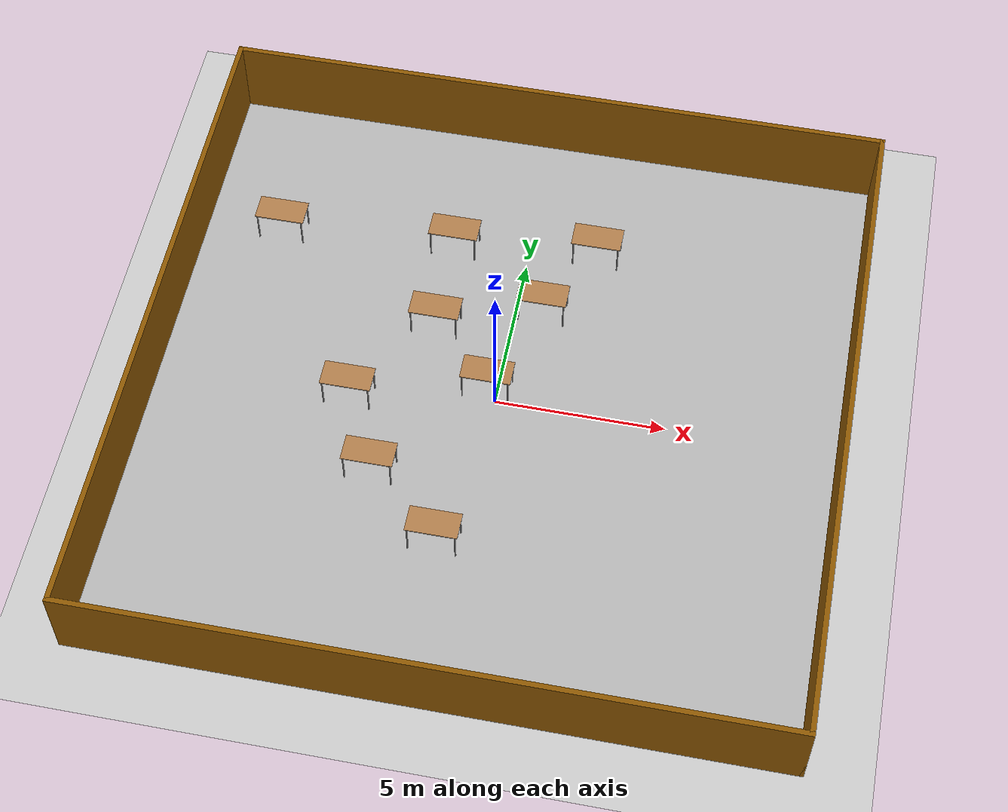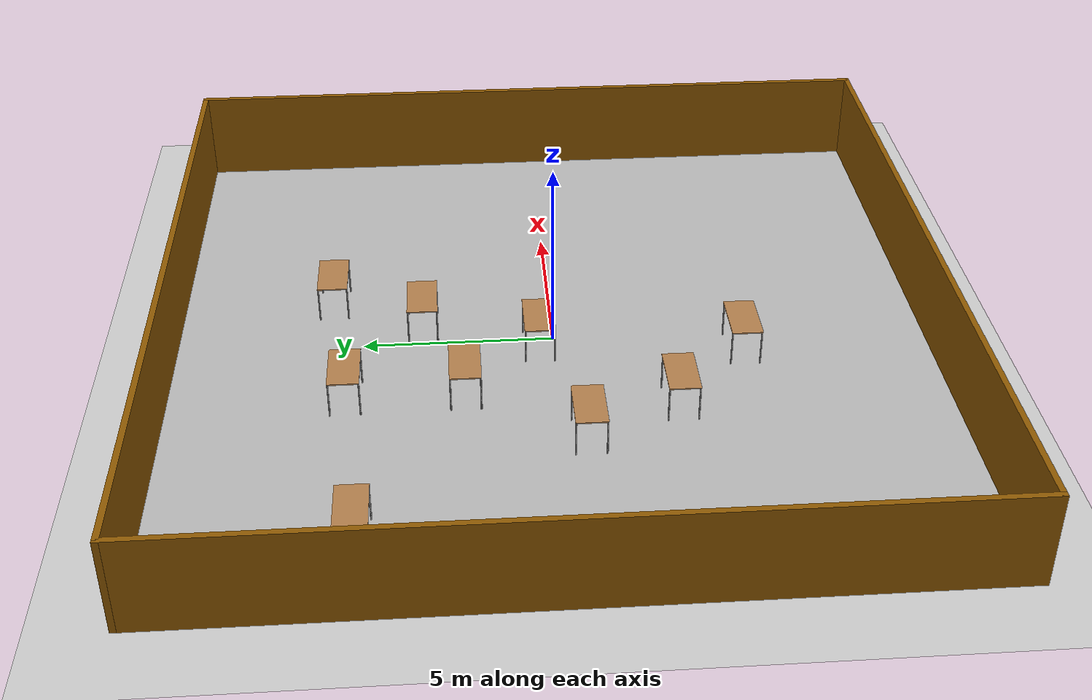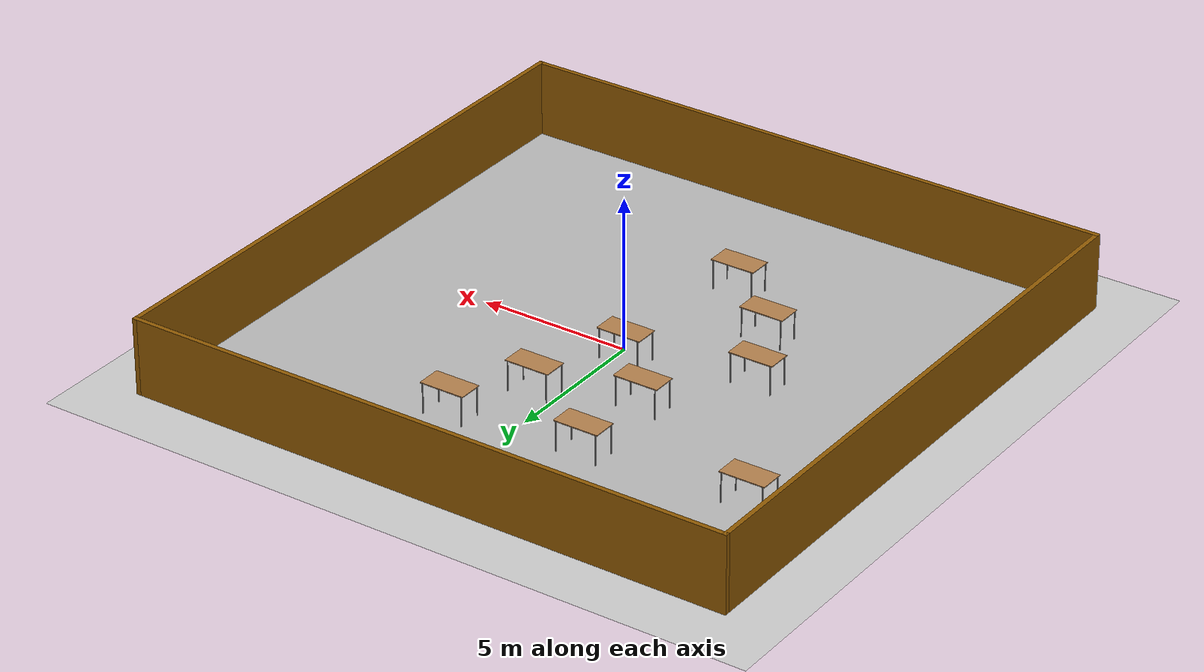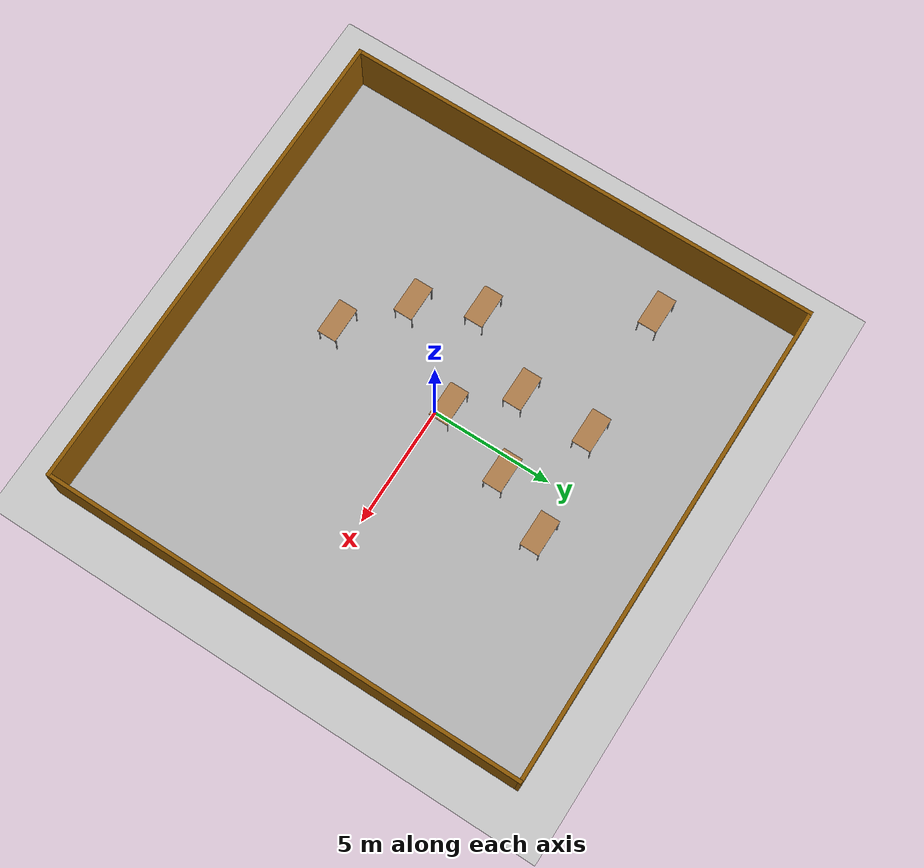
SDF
<sdf version="1.6">
 <world name="default">
  <light name="sun" type="directional">
   <pose>0 0 10 0 -0 0</pose>
   <diffuse>0.8 0.8 0.8 1</diffuse>
   <specular>0.2 0.2 0.2 1</specular>
   <attenuation>
    <range>1000</range>
    <constant>0.9</constant>
    <linear>0.01</linear>
    <quadratic>0.001</quadratic>
   </attenuation>
   <direction>-0.5 0.1 -0.9</direction>
  </light>
  <model name="ground_plane">
   <static>1</static>
   <link name="link">
    <collision name="collision">
     <geometry><plane><normal>0 0 1</normal><size>100 100</size></plane></geometry>
     <surface>
      <contact><collide_bitmask>65535</collide_bitmask></contact>
      <friction><ode><mu>100</mu><mu2>50</mu2></ode></friction>
     </surface>
    </collision>
    <visual name="visual">
     <cast_shadows>0</cast_shadows>
     <geometry><plane><normal>0 0 1</normal><size>100 100</size></plane></geometry>
     <material>
      <script><uri>file://media/materials/scripts/gazebo.material</uri><name>Gazebo/Grey</name></script>
     </material>
    </visual>
   </link>
  </model>
  <gravity>0 0 -9.8</gravity>
  <magnetic_field>6e-06 2.3e-05 -4.2e-05</magnetic_field>
  <atmosphere type="adiabatic"/>
  <physics name="default_physics" default="0" type="ode">
   <max_step_size>0.001</max_step_size>
   <real_time_factor>1</real_time_factor>
   <real_time_update_rate>1000</real_time_update_rate>
  </physics>
  <scene><ambient>0.4 0.4 0.4 1</ambient><background>0.7 0.7 0.7 1</background><shadows>1</shadows></scene>
  <audio><device>default</device></audio>
  <spherical_coordinates>
   <surface_model>EARTH_WGS84</surface_model>
   <latitude_deg>0</latitude_deg>
   <longitude_deg>0</longitude_deg>
   <elevation>0</elevation>
   <heading_deg>0</heading_deg>
  </spherical_coordinates>
  <model name="Floor_room">
   <link name="main">
    <pose>0 0 0.01 0 -0 0</pose>
    <collision name="main_Collision"><geometry><box><size>20 20 0.001</size></box></geometry></collision>
    <visual name="main_Visual">
     <geometry><box><size>20 20 0.001</size></box></geometry>
     <material>
      <script>
       <uri>model://Floor_room/materials/scripts</uri>
       <uri>model://Floor_room/materials/textures</uri>
       <name>floor_room</name>
      </script>
     </material>
    </visual>
   </link>
   <static>1</static>
   <pose>0.013435 -0.002174 0 0 -0 0</pose>
  </model>
  <model name="Wall">
   <link name="Wall_2">
    <collision name="Wall_2_Collision">
     <geometry><box><size>20 0.15 2.5</size></box></geometry>
     <pose>0 0 1.25 0 -0 0</pose>
    </collision>
    <visual name="Wall_2_Visual">
     <pose>0 0 1.25 0 -0 0</pose>
     <geometry><box><size>20 0.15 2.5</size></box></geometry>
     <material>
      <script><uri>file://media/materials/scripts/gazebo.material</uri><name>Gazebo/Grey</name></script>
      <ambient>0.560784 0.34902 0.00784314 1</ambient>
     </material>
     <meta><layer>0</layer></meta>
    </visual>
    <pose>-10.05 0 0 0 -0 -1.5708</pose>
   </link>
   <link name="Wall_4">
    <collision name="Wall_4_Collision">
     <geometry><box><size>20.25 0.15 2.5</size></box></geometry>
     <pose>0 0 1.25 0 -0 0</pose>
    </collision>
    <visual name="Wall_4_Visual">
     <pose>0 0 1.25 0 -0 0</pose>
     <geometry><box><size>20.25 0.15 2.5</size></box></geometry>
     <material>
      <script><uri>file://media/materials/scripts/gazebo.material</uri><name>Gazebo/Grey</name></script>
      <ambient>0.560784 0.34902 0.00784314 1</ambient>
     </material>
     <meta><layer>0</layer></meta>
    </visual>
    <pose>-0 -9.925 0 0 -0 0</pose>
   </link>
   <link name="Wall_6">
    <collision name="Wall_6_Collision">
     <geometry><box><size>20 0.15 2.5</size></box></geometry>
     <pose>0 0 1.25 0 -0 0</pose>
    </collision>
    <visual name="Wall_6_Visual">
     <pose>0 0 1.25 0 -0 0</pose>
     <geometry><box><size>20 0.15 2.5</size></box></geometry>
     <material>
      <script><uri>file://media/materials/scripts/gazebo.material</uri><name>Gazebo/Grey</name></script>
      <ambient>0.560784 0.34902 0.00784314 1</ambient>
     </material>
     <meta><layer>0</layer></meta>
    </visual>
    <pose>10.05 0 0 0 -0 1.5708</pose>
   </link>
   <link name="Wall_8">
    <collision name="Wall_8_Collision">
     <geometry><box><size>20.25 0.15 2.5</size></box></geometry>
     <pose>0 0 1.25 0 -0 0</pose>
    </collision>
    <visual name="Wall_8_Visual">
     <pose>0 0 1.25 0 -0 0</pose>
     <geometry><box><size>20.25 0.15 2.5</size></box></geometry>
     <material>
      <script><uri>file://media/materials/scripts/gazebo.material</uri><name>Gazebo/Grey</name></script>
      <ambient>0.560784 0.34902 0.00784314 1</ambient>
     </material>
     <meta><layer>0</layer></meta>
    </visual>
    <pose>-0 9.925 0 0 -0 3.14159</pose>
   </link>
   <static>1</static>
  </model>
  <model name="table">
   <static>1</static>
   <link name="link">
    <collision name="surface">
     <pose>0 0 1 0 -0 0</pose>
     <geometry><box><size>1.5 0.8 0.03</size></box></geometry>
     <surface><friction><ode><mu>0.6</mu><mu2>0.6</mu2></ode></friction></surface>
    </collision>
    <visual name="visual1">
     <pose>0 0 1 0 -0 0</pose>
     <geometry><box><size>1.5 0.8 0.03</size></box></geometry>
     <material>
      <script><uri>file://media/materials/scripts/gazebo.material</uri><name>Gazebo/Wood</name></script>
     </material>
    </visual>
    <collision name="front_left_leg">
     <pose>0.68 0.38 0.5 0 -0 0</pose>
     <geometry><cylinder><radius>0.02</radius><length>1</length></cylinder></geometry>
    </collision>
    <visual name="front_left_leg">
     <pose>0.68 0.38 0.5 0 -0 0</pose>
     <geometry><cylinder><radius>0.02</radius><length>1</length></cylinder></geometry>
     <material>
      <script><uri>file://media/materials/scripts/gazebo.material</uri><name>Gazebo/Grey</name></script>
     </material>
    </visual>
    <collision name="front_right_leg">
     <pose>0.68 -0.38 0.5 0 -0 0</pose>
     <geometry><cylinder><radius>0.02</radius><length>1</length></cylinder></geometry>
    </collision>
    <visual name="front_right_leg">
     <pose>0.68 -0.38 0.5 0 -0 0</pose>
     <geometry><cylinder><radius>0.02</radius><length>1</length></cylinder></geometry>
     <material>
      <script><uri>file://media/materials/scripts/gazebo.material</uri><name>Gazebo/Grey</name></script>
     </material>
    </visual>
    <collision name="back_right_leg">
     <pose>-0.68 -0.38 0.5 0 -0 0</pose>
     <geometry><cylinder><radius>0.02</radius><length>1</length></cylinder></geometry>
    </collision>
    <visual name="back_right_leg">
     <pose>-0.68 -0.38 0.5 0 -0 0</pose>
     <geometry><cylinder><radius>0.02</radius><length>1</length></cylinder></geometry>
     <material>
      <script><uri>file://media/materials/scripts/gazebo.material</uri><name>Gazebo/Grey</name></script>
     </material>
    </visual>
    <collision name="back_left_leg">
     <pose>-0.68 0.38 0.5 0 -0 0</pose>
     <geometry><cylinder><radius>0.02</radius><length>1</length></cylinder></geometry>
    </collision>
    <visual name="back_left_leg">
     <pose>-0.68 0.38 0.5 0 -0 0</pose>
     <geometry><cylinder><radius>0.02</radius><length>1</length></cylinder></geometry>
     <material>
      <script><uri>file://media/materials/scripts/gazebo.material</uri><name>Gazebo/Grey</name></script>
     </material>
    </visual>
   </link>
   <pose>-7.61458 5.02062 0 0 -0 0</pose>
  </model>
  <model name="table_clone">
   <static>1</static>
   <link name="link">
    <collision name="surface">
     <pose>0 0 1 0 -0 0</pose>
     <geometry><box><size>1.5 0.8 0.03</size></box></geometry>
     <surface><friction><ode><mu>0.6</mu><mu2>0.6</mu2></ode></friction></surface>
    </collision>
    <visual name="visual1">
     <pose>0 0 1 0 -0 0</pose>
     <geometry><box><size>1.5 0.8 0.03</size></box></geometry>
     <material>
      <script><uri>file://media/materials/scripts/gazebo.material</uri><name>Gazebo/Wood</name></script>
     </material>
    </visual>
    <collision name="front_left_leg">
     <pose>0.68 0.38 0.5 0 -0 0</pose>
     <geometry><cylinder><radius>0.02</radius><length>1</length></cylinder></geometry>
    </collision>
    <visual name="front_left_leg">
     <pose>0.68 0.38 0.5 0 -0 0</pose>
     <geometry><cylinder><radius>0.02</radius><length>1</length></cylinder></geometry>
     <material>
      <script><uri>file://media/materials/scripts/gazebo.material</uri><name>Gazebo/Grey</name></script>
     </material>
    </visual>
    <collision name="front_right_leg">
     <pose>0.68 -0.38 0.5 0 -0 0</pose>
     <geometry><cylinder><radius>0.02</radius><length>1</length></cylinder></geometry>
    </collision>
    <visual name="front_right_leg">
     <pose>0.68 -0.38 0.5 0 -0 0</pose>
     <geometry><cylinder><radius>0.02</radius><length>1</length></cylinder></geometry>
     <material>
      <script><uri>file://media/materials/scripts/gazebo.material</uri><name>Gazebo/Grey</name></script>
     </material>
    </visual>
    <collision name="back_right_leg">
     <pose>-0.68 -0.38 0.5 0 -0 0</pose>
     <geometry><cylinder><radius>0.02</radius><length>1</length></cylinder></geometry>
    </collision>
    <visual name="back_right_leg">
     <pose>-0.68 -0.38 0.5 0 -0 0</pose>
     <geometry><cylinder><radius>0.02</radius><length>1</length></cylinder></geometry>
     <material>
      <script><uri>file://media/materials/scripts/gazebo.material</uri><name>Gazebo/Grey</name></script>
     </material>
    </visual>
    <collision name="back_left_leg">
     <pose>-0.68 0.38 0.5 0 -0 0</pose>
     <geometry><cylinder><radius>0.02</radius><length>1</length></cylinder></geometry>
    </collision>
    <visual name="back_left_leg">
     <pose>-0.68 0.38 0.5 0 -0 0</pose>
     <geometry><cylinder><radius>0.02</radius><length>1</length></cylinder></geometry>
     <material>
      <script><uri>file://media/materials/scripts/gazebo.material</uri><name>Gazebo/Grey</name></script>
     </material>
    </visual>
   </link>
   <pose>-2.29426 5.37491 0 0 -0 0</pose>
  </model>
  <model name="table_clone_0">
   <static>1</static>
   <link name="link">
    <collision name="surface">
     <pose>0 0 1 0 -0 0</pose>
     <geometry><box><size>1.5 0.8 0.03</size></box></geometry>
     <surface><friction><ode><mu>0.6</mu><mu2>0.6</mu2></ode></friction></surface>
    </collision>
    <visual name="visual1">
     <pose>0 0 1 0 -0 0</pose>
     <geometry><box><size>1.5 0.8 0.03</size></box></geometry>
     <material>
      <script><uri>file://media/materials/scripts/gazebo.material</uri><name>Gazebo/Wood</name></script>
     </material>
    </visual>
    <collision name="front_left_leg">
     <pose>0.68 0.38 0.5 0 -0 0</pose>
     <geometry><cylinder><radius>0.02</radius><length>1</length></cylinder></geometry>
    </collision>
    <visual name="front_left_leg">
     <pose>0.68 0.38 0.5 0 -0 0</pose>
     <geometry><cylinder><radius>0.02</radius><length>1</length></cylinder></geometry>
     <material>
      <script><uri>file://media/materials/scripts/gazebo.material</uri><name>Gazebo/Grey</name></script>
     </material>
    </visual>
    <collision name="front_right_leg">
     <pose>0.68 -0.38 0.5 0 -0 0</pose>
     <geometry><cylinder><radius>0.02</radius><length>1</length></cylinder></geometry>
    </collision>
    <visual name="front_right_leg">
     <pose>0.68 -0.38 0.5 0 -0 0</pose>
     <geometry><cylinder><radius>0.02</radius><length>1</length></cylinder></geometry>
     <material>
      <script><uri>file://media/materials/scripts/gazebo.material</uri><name>Gazebo/Grey</name></script>
     </material>
    </visual>
    <collision name="back_right_leg">
     <pose>-0.68 -0.38 0.5 0 -0 0</pose>
     <geometry><cylinder><radius>0.02</radius><length>1</length></cylinder></geometry>
    </collision>
    <visual name="back_right_leg">
     <pose>-0.68 -0.38 0.5 0 -0 0</pose>
     <geometry><cylinder><radius>0.02</radius><length>1</length></cylinder></geometry>
     <material>
      <script><uri>file://media/materials/scripts/gazebo.material</uri><name>Gazebo/Grey</name></script>
     </material>
    </visual>
    <collision name="back_left_leg">
     <pose>-0.68 0.38 0.5 0 -0 0</pose>
     <geometry><cylinder><radius>0.02</radius><length>1</length></cylinder></geometry>
    </collision>
    <visual name="back_left_leg">
     <pose>-0.68 0.38 0.5 0 -0 0</pose>
     <geometry><cylinder><radius>0.02</radius><length>1</length></cylinder></geometry>
     <material>
      <script><uri>file://media/materials/scripts/gazebo.material</uri><name>Gazebo/Grey</name></script>
     </material>
    </visual>
   </link>
   <pose>-2.26515 2.37755 0 0 -0 0</pose>
  </model>
  <model name="table_clone_1">
   <static>1</static>
   <link name="link">
    <collision name="surface">
     <pose>0 0 1 0 -0 0</pose>
     <geometry><box><size>1.5 0.8 0.03</size></box></geometry>
     <surface><friction><ode><mu>0.6</mu><mu2>0.6</mu2></ode></friction></surface>
    </collision>
    <visual name="visual1">
     <pose>0 0 1 0 -0 0</pose>
     <geometry><box><size>1.5 0.8 0.03</size></box></geometry>
     <material>
      <script><uri>file://media/materials/scripts/gazebo.material</uri><name>Gazebo/Wood</name></script>
     </material>
    </visual>
    <collision name="front_left_leg">
     <pose>0.68 0.38 0.5 0 -0 0</pose>
     <geometry><cylinder><radius>0.02</radius><length>1</length></cylinder></geometry>
    </collision>
    <visual name="front_left_leg">
     <pose>0.68 0.38 0.5 0 -0 0</pose>
     <geometry><cylinder><radius>0.02</radius><length>1</length></cylinder></geometry>
     <material>
      <script><uri>file://media/materials/scripts/gazebo.material</uri><name>Gazebo/Grey</name></script>
     </material>
    </visual>
    <collision name="front_right_leg">
     <pose>0.68 -0.38 0.5 0 -0 0</pose>
     <geometry><cylinder><radius>0.02</radius><length>1</length></cylinder></geometry>
    </collision>
    <visual name="front_right_leg">
     <pose>0.68 -0.38 0.5 0 -0 0</pose>
     <geometry><cylinder><radius>0.02</radius><length>1</length></cylinder></geometry>
     <material>
      <script><uri>file://media/materials/scripts/gazebo.material</uri><name>Gazebo/Grey</name></script>
     </material>
    </visual>
    <collision name="back_right_leg">
     <pose>-0.68 -0.38 0.5 0 -0 0</pose>
     <geometry><cylinder><radius>0.02</radius><length>1</length></cylinder></geometry>
    </collision>
    <visual name="back_right_leg">
     <pose>-0.68 -0.38 0.5 0 -0 0</pose>
     <geometry><cylinder><radius>0.02</radius><length>1</length></cylinder></geometry>
     <material>
      <script><uri>file://media/materials/scripts/gazebo.material</uri><name>Gazebo/Grey</name></script>
     </material>
    </visual>
    <collision name="back_left_leg">
     <pose>-0.68 0.38 0.5 0 -0 0</pose>
     <geometry><cylinder><radius>0.02</radius><length>1</length></cylinder></geometry>
    </collision>
    <visual name="back_left_leg">
     <pose>-0.68 0.38 0.5 0 -0 0</pose>
     <geometry><cylinder><radius>0.02</radius><length>1</length></cylinder></geometry>
     <material>
      <script><uri>file://media/materials/scripts/gazebo.material</uri><name>Gazebo/Grey</name></script>
     </material>
    </visual>
   </link>
   <pose>-4.24888 -0.572404 0 0 -0 0</pose>
  </model>
  <model name="table_clone_2">
   <static>1</static>
   <link name="link">
    <collision name="surface">
     <pose>0 0 1 0 -0 0</pose>
     <geometry><box><size>1.5 0.8 0.03</size></box></geometry>
     <surface><friction><ode><mu>0.6</mu><mu2>0.6</mu2></ode></friction></surface>
    </collision>
    <visual name="visual1">
     <pose>0 0 1 0 -0 0</pose>
     <geometry><box><size>1.5 0.8 0.03</size></box></geometry>
     <material>
      <script><uri>file://media/materials/scripts/gazebo.material</uri><name>Gazebo/Wood</name></script>
     </material>
    </visual>
    <collision name="front_left_leg">
     <pose>0.68 0.38 0.5 0 -0 0</pose>
     <geometry><cylinder><radius>0.02</radius><length>1</length></cylinder></geometry>
    </collision>
    <visual name="front_left_leg">
     <pose>0.68 0.38 0.5 0 -0 0</pose>
     <geometry><cylinder><radius>0.02</radius><length>1</length></cylinder></geometry>
     <material>
      <script><uri>file://media/materials/scripts/gazebo.material</uri><name>Gazebo/Grey</name></script>
     </material>
    </visual>
    <collision name="front_right_leg">
     <pose>0.68 -0.38 0.5 0 -0 0</pose>
     <geometry><cylinder><radius>0.02</radius><length>1</length></cylinder></geometry>
    </collision>
    <visual name="front_right_leg">
     <pose>0.68 -0.38 0.5 0 -0 0</pose>
     <geometry><cylinder><radius>0.02</radius><length>1</length></cylinder></geometry>
     <material>
      <script><uri>file://media/materials/scripts/gazebo.material</uri><name>Gazebo/Grey</name></script>
     </material>
    </visual>
    <collision name="back_right_leg">
     <pose>-0.68 -0.38 0.5 0 -0 0</pose>
     <geometry><cylinder><radius>0.02</radius><length>1</length></cylinder></geometry>
    </collision>
    <visual name="back_right_leg">
     <pose>-0.68 -0.38 0.5 0 -0 0</pose>
     <geometry><cylinder><radius>0.02</radius><length>1</length></cylinder></geometry>
     <material>
      <script><uri>file://media/materials/scripts/gazebo.material</uri><name>Gazebo/Grey</name></script>
     </material>
    </visual>
    <collision name="back_left_leg">
     <pose>-0.68 0.38 0.5 0 -0 0</pose>
     <geometry><cylinder><radius>0.02</radius><length>1</length></cylinder></geometry>
    </collision>
    <visual name="back_left_leg">
     <pose>-0.68 0.38 0.5 0 -0 0</pose>
     <geometry><cylinder><radius>0.02</radius><length>1</length></cylinder></geometry>
     <material>
      <script><uri>file://media/materials/scripts/gazebo.material</uri><name>Gazebo/Grey</name></script>
     </material>
    </visual>
   </link>
   <pose>0.77581 3.42994 0 0 -0 0</pose>
  </model>
  <model name="table_clone_3">
   <static>1</static>
   <link name="link">
    <collision name="surface">
     <pose>0 0 1 0 -0 0</pose>
     <geometry><box><size>1.5 0.8 0.03</size></box></geometry>
     <surface><friction><ode><mu>0.6</mu><mu2>0.6</mu2></ode></friction></surface>
    </collision>
    <visual name="visual1">
     <pose>0 0 1 0 -0 0</pose>
     <geometry><box><size>1.5 0.8 0.03</size></box></geometry>
     <material>
      <script><uri>file://media/materials/scripts/gazebo.material</uri><name>Gazebo/Wood</name></script>
     </material>
    </visual>
    <collision name="front_left_leg">
     <pose>0.68 0.38 0.5 0 -0 0</pose>
     <geometry><cylinder><radius>0.02</radius><length>1</length></cylinder></geometry>
    </collision>
    <visual name="front_left_leg">
     <pose>0.68 0.38 0.5 0 -0 0</pose>
     <geometry><cylinder><radius>0.02</radius><length>1</length></cylinder></geometry>
     <material>
      <script><uri>file://media/materials/scripts/gazebo.material</uri><name>Gazebo/Grey</name></script>
     </material>
    </visual>
    <collision name="front_right_leg">
     <pose>0.68 -0.38 0.5 0 -0 0</pose>
     <geometry><cylinder><radius>0.02</radius><length>1</length></cylinder></geometry>
    </collision>
    <visual name="front_right_leg">
     <pose>0.68 -0.38 0.5 0 -0 0</pose>
     <geometry><cylinder><radius>0.02</radius><length>1</length></cylinder></geometry>
     <material>
      <script><uri>file://media/materials/scripts/gazebo.material</uri><name>Gazebo/Grey</name></script>
     </material>
    </visual>
    <collision name="back_right_leg">
     <pose>-0.68 -0.38 0.5 0 -0 0</pose>
     <geometry><cylinder><radius>0.02</radius><length>1</length></cylinder></geometry>
    </collision>
    <visual name="back_right_leg">
     <pose>-0.68 -0.38 0.5 0 -0 0</pose>
     <geometry><cylinder><radius>0.02</radius><length>1</length></cylinder></geometry>
     <material>
      <script><uri>file://media/materials/scripts/gazebo.material</uri><name>Gazebo/Grey</name></script>
     </material>
    </visual>
    <collision name="back_left_leg">
     <pose>-0.68 0.38 0.5 0 -0 0</pose>
     <geometry><cylinder><radius>0.02</radius><length>1</length></cylinder></geometry>
    </collision>
    <visual name="back_left_leg">
     <pose>-0.68 0.38 0.5 0 -0 0</pose>
     <geometry><cylinder><radius>0.02</radius><length>1</length></cylinder></geometry>
     <material>
      <script><uri>file://media/materials/scripts/gazebo.material</uri><name>Gazebo/Grey</name></script>
     </material>
    </visual>
   </link>
   <pose>-0.320036 0.405513 0 0 -0 0</pose>
  </model>
  <model name="table_clone_4">
   <static>1</static>
   <link name="link">
    <collision name="surface">
     <pose>0 0 1 0 -0 0</pose>
     <geometry><box><size>1.5 0.8 0.03</size></box></geometry>
     <surface><friction><ode><mu>0.6</mu><mu2>0.6</mu2></ode></friction></surface>
    </collision>
    <visual name="visual1">
     <pose>0 0 1 0 -0 0</pose>
     <geometry><box><size>1.5 0.8 0.03</size></box></geometry>
     <material>
      <script><uri>file://media/materials/scripts/gazebo.material</uri><name>Gazebo/Wood</name></script>
     </material>
    </visual>
    <collision name="front_left_leg">
     <pose>0.68 0.38 0.5 0 -0 0</pose>
     <geometry><cylinder><radius>0.02</radius><length>1</length></cylinder></geometry>
    </collision>
    <visual name="front_left_leg">
     <pose>0.68 0.38 0.5 0 -0 0</pose>
     <geometry><cylinder><radius>0.02</radius><length>1</length></cylinder></geometry>
     <material>
      <script><uri>file://media/materials/scripts/gazebo.material</uri><name>Gazebo/Grey</name></script>
     </material>
    </visual>
    <collision name="front_right_leg">
     <pose>0.68 -0.38 0.5 0 -0 0</pose>
     <geometry><cylinder><radius>0.02</radius><length>1</length></cylinder></geometry>
    </collision>
    <visual name="front_right_leg">
     <pose>0.68 -0.38 0.5 0 -0 0</pose>
     <geometry><cylinder><radius>0.02</radius><length>1</length></cylinder></geometry>
     <material>
      <script><uri>file://media/materials/scripts/gazebo.material</uri><name>Gazebo/Grey</name></script>
     </material>
    </visual>
    <collision name="back_right_leg">
     <pose>-0.68 -0.38 0.5 0 -0 0</pose>
     <geometry><cylinder><radius>0.02</radius><length>1</length></cylinder></geometry>
    </collision>
    <visual name="back_right_leg">
     <pose>-0.68 -0.38 0.5 0 -0 0</pose>
     <geometry><cylinder><radius>0.02</radius><length>1</length></cylinder></geometry>
     <material>
      <script><uri>file://media/materials/scripts/gazebo.material</uri><name>Gazebo/Grey</name></script>
     </material>
    </visual>
    <collision name="back_left_leg">
     <pose>-0.68 0.38 0.5 0 -0 0</pose>
     <geometry><cylinder><radius>0.02</radius><length>1</length></cylinder></geometry>
    </collision>
    <visual name="back_left_leg">
     <pose>-0.68 0.38 0.5 0 -0 0</pose>
     <geometry><cylinder><radius>0.02</radius><length>1</length></cylinder></geometry>
     <material>
      <script><uri>file://media/materials/scripts/gazebo.material</uri><name>Gazebo/Grey</name></script>
     </material>
    </visual>
   </link>
   <pose>2.02908 5.81796 0 0 -0 0</pose>
  </model>
  <model name="table_clone_5">
   <static>1</static>
   <link name="link">
    <collision name="surface">
     <pose>0 0 1 0 -0 0</pose>
     <geometry><box><size>1.5 0.8 0.03</size></box></geometry>
     <surface><friction><ode><mu>0.6</mu><mu2>0.6</mu2></ode></friction></surface>
    </collision>
    <visual name="visual1">
     <pose>0 0 1 0 -0 0</pose>
     <geometry><box><size>1.5 0.8 0.03</size></box></geometry>
     <material>
      <script><uri>file://media/materials/scripts/gazebo.material</uri><name>Gazebo/Wood</name></script>
     </material>
    </visual>
    <collision name="front_left_leg">
     <pose>0.68 0.38 0.5 0 -0 0</pose>
     <geometry><cylinder><radius>0.02</radius><length>1</length></cylinder></geometry>
    </collision>
    <visual name="front_left_leg">
     <pose>0.68 0.38 0.5 0 -0 0</pose>
     <geometry><cylinder><radius>0.02</radius><length>1</length></cylinder></geometry>
     <material>
      <script><uri>file://media/materials/scripts/gazebo.material</uri><name>Gazebo/Grey</name></script>
     </material>
    </visual>
    <collision name="front_right_leg">
     <pose>0.68 -0.38 0.5 0 -0 0</pose>
     <geometry><cylinder><radius>0.02</radius><length>1</length></cylinder></geometry>
    </collision>
    <visual name="front_right_leg">
     <pose>0.68 -0.38 0.5 0 -0 0</pose>
     <geometry><cylinder><radius>0.02</radius><length>1</length></cylinder></geometry>
     <material>
      <script><uri>file://media/materials/scripts/gazebo.material</uri><name>Gazebo/Grey</name></script>
     </material>
    </visual>
    <collision name="back_right_leg">
     <pose>-0.68 -0.38 0.5 0 -0 0</pose>
     <geometry><cylinder><radius>0.02</radius><length>1</length></cylinder></geometry>
    </collision>
    <visual name="back_right_leg">
     <pose>-0.68 -0.38 0.5 0 -0 0</pose>
     <geometry><cylinder><radius>0.02</radius><length>1</length></cylinder></geometry>
     <material>
      <script><uri>file://media/materials/scripts/gazebo.material</uri><name>Gazebo/Grey</name></script>
     </material>
    </visual>
    <collision name="back_left_leg">
     <pose>-0.68 0.38 0.5 0 -0 0</pose>
     <geometry><cylinder><radius>0.02</radius><length>1</length></cylinder></geometry>
    </collision>
    <visual name="back_left_leg">
     <pose>-0.68 0.38 0.5 0 -0 0</pose>
     <geometry><cylinder><radius>0.02</radius><length>1</length></cylinder></geometry>
     <material>
      <script><uri>file://media/materials/scripts/gazebo.material</uri><name>Gazebo/Grey</name></script>
     </material>
    </visual>
   </link>
   <pose>-3.06464 -2.95855 0 0 -0 0</pose>
  </model>
  <model name="table_clone_6">
   <static>1</static>
   <link name="link">
    <collision name="surface">
     <pose>0 0 1 0 -0 0</pose>
     <geometry><box><size>1.5 0.8 0.03</size></box></geometry>
     <surface><friction><ode><mu>0.6</mu><mu2>0.6</mu2></ode></friction></surface>
    </collision>
    <visual name="visual1">
     <pose>0 0 1 0 -0 0</pose>
     <geometry><box><size>1.5 0.8 0.03</size></box></geometry>
     <material>
      <script><uri>file://media/materials/scripts/gazebo.material</uri><name>Gazebo/Wood</name></script>
     </material>
    </visual>
    <collision name="front_left_leg">
     <pose>0.68 0.38 0.5 0 -0 0</pose>
     <geometry><cylinder><radius>0.02</radius><length>1</length></cylinder></geometry>
    </collision>
    <visual name="front_left_leg">
     <pose>0.68 0.38 0.5 0 -0 0</pose>
     <geometry><cylinder><radius>0.02</radius><length>1</length></cylinder></geometry>
     <material>
      <script><uri>file://media/materials/scripts/gazebo.material</uri><name>Gazebo/Grey</name></script>
     </material>
    </visual>
    <collision name="front_right_leg">
     <pose>0.68 -0.38 0.5 0 -0 0</pose>
     <geometry><cylinder><radius>0.02</radius><length>1</length></cylinder></geometry>
    </collision>
    <visual name="front_right_leg">
     <pose>0.68 -0.38 0.5 0 -0 0</pose>
     <geometry><cylinder><radius>0.02</radius><length>1</length></cylinder></geometry>
     <material>
      <script><uri>file://media/materials/scripts/gazebo.material</uri><name>Gazebo/Grey</name></script>
     </material>
    </visual>
    <collision name="back_right_leg">
     <pose>-0.68 -0.38 0.5 0 -0 0</pose>
     <geometry><cylinder><radius>0.02</radius><length>1</length></cylinder></geometry>
    </collision>
    <visual name="back_right_leg">
     <pose>-0.68 -0.38 0.5 0 -0 0</pose>
     <geometry><cylinder><radius>0.02</radius><length>1</length></cylinder></geometry>
     <material>
      <script><uri>file://media/materials/scripts/gazebo.material</uri><name>Gazebo/Grey</name></script>
     </material>
    </visual>
    <collision name="back_left_leg">
     <pose>-0.68 0.38 0.5 0 -0 0</pose>
     <geometry><cylinder><radius>0.02</radius><length>1</length></cylinder></geometry>
    </collision>
    <visual name="back_left_leg">
     <pose>-0.68 0.38 0.5 0 -0 0</pose>
     <geometry><cylinder><radius>0.02</radius><length>1</length></cylinder></geometry>
     <material>
      <script><uri>file://media/materials/scripts/gazebo.material</uri><name>Gazebo/Grey</name></script>
     </material>
    </visual>
   </link>
   <pose>-0.798629 -4.88527 0 0 -0 0</pose>
  </model>
 </world>
</sdf>
